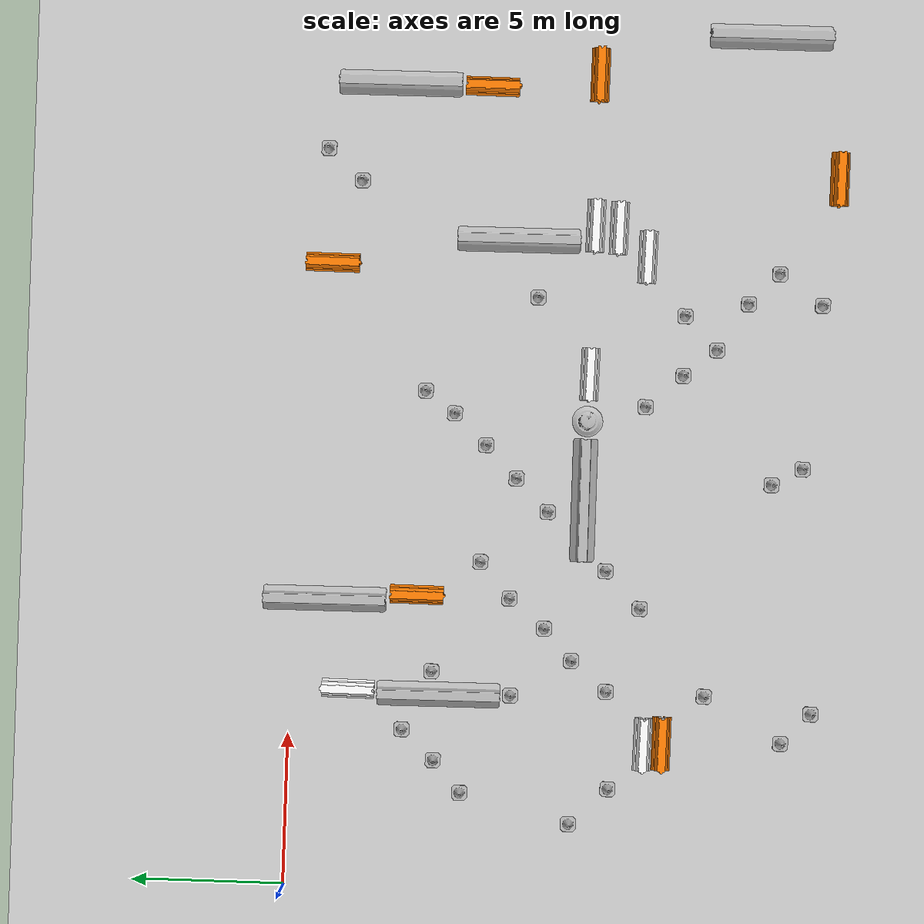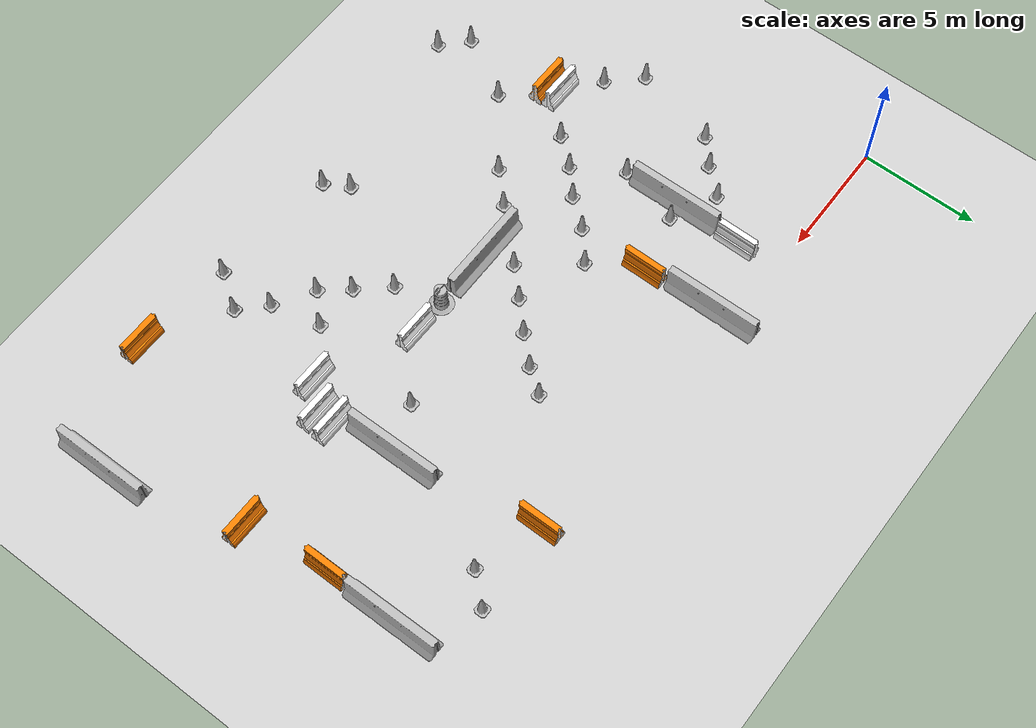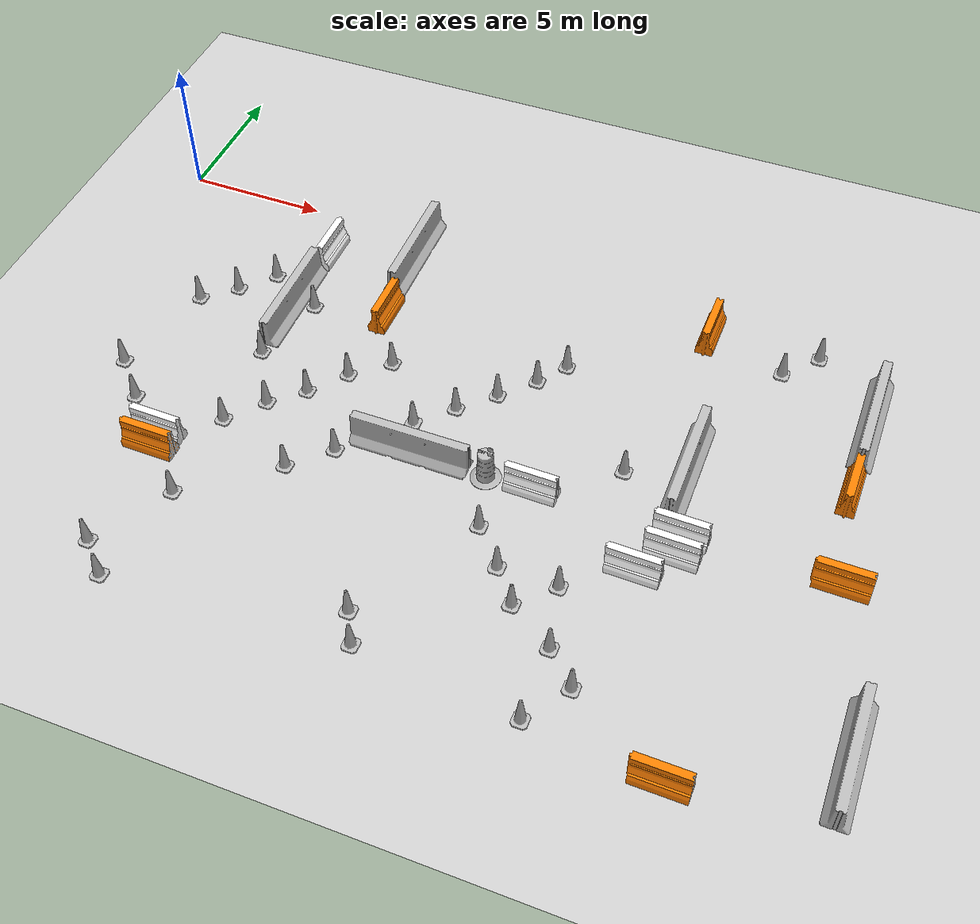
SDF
<sdf version="1.6">
 <world name="default">
  <model name="ground_plane">
   <static>1</static>
   <link name="link">
    <collision name="collision">
     <geometry><plane><normal>0 0 1</normal><size>100 100</size></plane></geometry>
     <surface>
      <contact><collide_bitmask>65535</collide_bitmask></contact>
      <friction><ode><mu>100</mu><mu2>50</mu2></ode></friction>
     </surface>
    </collision>
    <visual name="visual">
     <cast_shadows>0</cast_shadows>
     <geometry><plane><normal>0 0 1</normal><size>100 100</size></plane></geometry>
     <material>
      <script><uri>file://media/materials/scripts/gazebo.material</uri><name>Gazebo/Grey</name></script>
     </material>
    </visual>
   </link>
  </model>
  <model name="Construction Cone_0_clone_0_clone_clone_clone_clone_clone_3_clone_0_clone_clone_2_clone_clone_0_clone_0_clone_1">
   <static>1</static>
   <link name="link">
    <collision name="collision">
     <geometry>
      <mesh><scale>10 10 10</scale><uri>model://construction_cone/meshes/construction_cone.dae</uri></mesh>
     </geometry>
    </collision>
    <visual name="visual">
     <geometry>
      <mesh><scale>10 10 10</scale><uri>model://construction_cone/meshes/construction_cone.dae</uri></mesh>
     </geometry>
    </visual>
    <inertial>
     <inertia><ixx>1</ixx><ixy>0</ixy><ixz>0</ixz><iyy>1</iyy><iyz>0</iyz><izz>1</izz></inertia>
     <mass>1</mass>
    </inertial>
   </link>
   <pose>24.3939 -0.708594 -0 0 -0 0</pose>
  </model>
  <model name="Construction Cone_0_clone_0_clone_clone_clone_clone_clone_3_clone_0_clone_clone_2_clone_clone_0_clone_0_clone_2">
   <static>1</static>
   <link name="link">
    <collision name="collision">
     <geometry>
      <mesh><scale>10 10 10</scale><uri>model://construction_cone/meshes/construction_cone.dae</uri></mesh>
     </geometry>
    </collision>
    <visual name="visual">
     <geometry>
      <mesh><scale>10 10 10</scale><uri>model://construction_cone/meshes/construction_cone.dae</uri></mesh>
     </geometry>
    </visual>
    <inertial>
     <inertia><ixx>1</ixx><ixy>0</ixy><ixz>0</ixz><iyy>1</iyy><iyz>0</iyz><izz>1</izz></inertia>
     <mass>1</mass>
    </inertial>
   </link>
   <pose>23.3648 -1.84976 -0 0 -0 0</pose>
  </model>
  <model name="jersey_barrier_clone_clone_clone_clone_clone_clone">
   <static>1</static>
   <link name="link">
    <visual name="visual">
     <geometry><mesh><uri>model://jersey_barrier/meshes/jersey_barrier.dae</uri></mesh></geometry>
    </visual>
    <collision name="upright">
     <pose>0 0 0.5715 0 -0 0</pose>
     <geometry><box><size>4.06542 0.3063 1.143</size></box></geometry>
    </collision>
    <collision name="base">
     <pose>0 0 0.032258 0 -0 0</pose>
     <geometry><box><size>4.06542 0.8107 0.064516</size></box></geometry>
    </collision>
    <collision name="base2">
     <pose>0 0 0.1 0 -0 0</pose>
     <geometry><box><size>4.06542 0.65 0.1</size></box></geometry>
    </collision>
    <collision name="base3">
     <pose>0 0 0.2 0 -0 0</pose>
     <geometry><box><size>4.06542 0.5 0.1</size></box></geometry>
    </collision>
    <collision name="left-angle">
     <pose>0 -0.224 0.2401 0.9 -0 0</pose>
     <geometry><box><size>4.06542 0.5 0.064516</size></box></geometry>
    </collision>
    <collision name="right-angle">
     <pose>0 0.224 0.2401 -0.9 0 0</pose>
     <geometry><box><size>4.06542 0.5 0.064516</size></box></geometry>
    </collision>
   </link>
   <pose>26.6253 -3.02419 0 0 0 -1.56391</pose>
  </model>
  <model name="drc_practice_organge_jersey_barrier_clone_clone_0_clone_0_clone_clone">
   <static>1</static>
   <link name="link">
    <visual name="visual">
     <geometry>
      <mesh><uri>model://drc_practice_orange_jersey_barrier/meshes/jersey_barrier.dae</uri></mesh>
     </geometry>
    </visual>
    <collision name="collision">
     <geometry>
      <mesh><uri>model://drc_practice_orange_jersey_barrier/meshes/jersey_barrier.dae</uri></mesh>
     </geometry>
    </collision>
   </link>
   <pose>26.6095 -6.05632 0 0 -0 0</pose>
  </model>
  <model name="drc_practice_organge_jersey_barrier_clone_clone_0_clone_0_clone_clone_0">
   <static>1</static>
   <link name="link">
    <visual name="visual">
     <geometry>
      <mesh><uri>model://drc_practice_orange_jersey_barrier/meshes/jersey_barrier.dae</uri></mesh>
     </geometry>
    </visual>
    <collision name="collision">
     <geometry>
      <mesh><uri>model://drc_practice_orange_jersey_barrier/meshes/jersey_barrier.dae</uri></mesh>
     </geometry>
    </collision>
   </link>
   <pose>20.6192 -0.970378 0 0 -0 0</pose>
  </model>
  <model name="Construction Cone_0_clone_0_clone_clone_clone_clone_clone_3_clone_0_clone_clone_clone_1_clone_1_clone_clone_clone_0_clone_clone_clone">
   <static>1</static>
   <link name="link">
    <collision name="collision">
     <geometry>
      <mesh><scale>10 10 10</scale><uri>model://construction_cone/meshes/construction_cone.dae</uri></mesh>
     </geometry>
    </collision>
    <visual name="visual">
     <geometry>
      <mesh><scale>10 10 10</scale><uri>model://construction_cone/meshes/construction_cone.dae</uri></mesh>
     </geometry>
    </visual>
    <inertial>
     <inertia><ixx>1</ixx><ixy>0</ixy><ixz>0</ixz><iyy>1</iyy><iyz>0</iyz><izz>1</izz></inertia>
     <mass>1</mass>
    </inertial>
   </link>
   <pose>3.223 -5.72534 -0 0 -1e-06 -0.001073</pose>
  </model>
  <model name="Construction Cone_0_clone_0_clone_clone_clone_clone_clone_3_clone_0_clone_clone_clone_1_clone_1_clone_clone_clone_0_clone_clone_clone_0">
   <static>1</static>
   <link name="link">
    <collision name="collision">
     <geometry>
      <mesh><scale>10 10 10</scale><uri>model://construction_cone/meshes/construction_cone.dae</uri></mesh>
     </geometry>
    </collision>
    <visual name="visual">
     <geometry>
      <mesh><scale>10 10 10</scale><uri>model://construction_cone/meshes/construction_cone.dae</uri></mesh>
     </geometry>
    </visual>
    <inertial>
     <inertia><ixx>1</ixx><ixy>0</ixy><ixz>0</ixz><iyy>1</iyy><iyz>0</iyz><izz>1</izz></inertia>
     <mass>1</mass>
    </inertial>
   </link>
   <pose>4.27367 -4.81293 -0 0 -1e-06 -0.001073</pose>
  </model>
  <model name="Construction Cone_0_clone_0_clone_clone_clone_clone_clone_3_clone_0_clone_clone_clone_1_clone_1_clone_clone_clone_0_clone_clone_clone_1">
   <static>1</static>
   <link name="link">
    <collision name="collision">
     <geometry>
      <mesh><scale>10 10 10</scale><uri>model://construction_cone/meshes/construction_cone.dae</uri></mesh>
     </geometry>
    </collision>
    <visual name="visual">
     <geometry>
      <mesh><scale>10 10 10</scale><uri>model://construction_cone/meshes/construction_cone.dae</uri></mesh>
     </geometry>
    </visual>
    <inertial>
     <inertia><ixx>1</ixx><ixy>0</ixy><ixz>0</ixz><iyy>1</iyy><iyz>0</iyz><izz>1</izz></inertia>
     <mass>1</mass>
    </inertial>
   </link>
   <pose>5.26095 -3.74508 -0 0 0 -0.001073</pose>
  </model>
  <model name="drc_practice_white_jersey_barrier_clone_clone_clone_0_clone_0_clone_clone_0_clone_clone">
   <static>1</static>
   <link name="link">
    <visual name="visual">
     <geometry>
      <mesh><uri>model://drc_practice_white_jersey_barrier/meshes/jersey_barrier.dae</uri></mesh>
     </geometry>
    </visual>
    <collision name="collision">
     <geometry>
      <mesh><uri>model://drc_practice_white_jersey_barrier/meshes/jersey_barrier.dae</uri></mesh>
     </geometry>
    </collision>
   </link>
   <pose>6.55651 -1.93439 0 0 -0 3.13979</pose>
  </model>
  <model name="Construction Cone_0_clone_0_clone_clone_clone_clone_clone_3_clone_0_clone_clone_clone_1_clone_1_clone_clone_clone_0_clone_clone_clone_2">
   <static>1</static>
   <link name="link">
    <collision name="collision">
     <geometry>
      <mesh><scale>10 10 10</scale><uri>model://construction_cone/meshes/construction_cone.dae</uri></mesh>
     </geometry>
    </collision>
    <visual name="visual">
     <geometry>
      <mesh><scale>10 10 10</scale><uri>model://construction_cone/meshes/construction_cone.dae</uri></mesh>
     </geometry>
    </visual>
    <inertial>
     <inertia><ixx>1</ixx><ixy>0</ixy><ixz>0</ixz><iyy>1</iyy><iyz>0</iyz><izz>1</izz></inertia>
     <mass>1</mass>
    </inertial>
   </link>
   <pose>6.49881 -7.30216 -0 0 0 -0.001073</pose>
  </model>
  <model name="Construction Cone_0_clone_0_clone_clone_clone_clone_clone_3_clone_0_clone_clone_clone_1_clone_1_clone_clone_clone_0_clone_clone_clone_2_clone">
   <static>1</static>
   <link name="link">
    <collision name="collision">
     <geometry>
      <mesh><scale>10 10 10</scale><uri>model://construction_cone/meshes/construction_cone.dae</uri></mesh>
     </geometry>
    </collision>
    <visual name="visual">
     <geometry>
      <mesh><scale>10 10 10</scale><uri>model://construction_cone/meshes/construction_cone.dae</uri></mesh>
     </geometry>
    </visual>
    <inertial>
     <inertia><ixx>1</ixx><ixy>0</ixy><ixz>0</ixz><iyy>1</iyy><iyz>0</iyz><izz>1</izz></inertia>
     <mass>1</mass>
    </inertial>
   </link>
   <pose>7.21109 -4.66885 -0 0 0 -0.001073</pose>
  </model>
  <model name="drc_practice_organge_jersey_barrier_clone_clone_0_clone_0_clone_0_clone_clone_clone_clone">
   <static>1</static>
   <link name="link">
    <visual name="visual">
     <geometry>
      <mesh><uri>model://drc_practice_orange_jersey_barrier/meshes/jersey_barrier.dae</uri></mesh>
     </geometry>
    </visual>
    <collision name="collision">
     <geometry>
      <mesh><uri>model://drc_practice_orange_jersey_barrier/meshes/jersey_barrier.dae</uri></mesh>
     </geometry>
    </collision>
   </link>
   <pose>9.73339 -4.10068 0 0 -0 0</pose>
  </model>
  <model name="Construction Cone_0_clone_0_clone_clone_clone_clone_clone_3_clone_0_clone_clone_clone_1_clone_1_clone_clone_clone_0_clone_clone_clone_3">
   <static>1</static>
   <link name="link">
    <collision name="collision">
     <geometry>
      <mesh><scale>10 10 10</scale><uri>model://construction_cone/meshes/construction_cone.dae</uri></mesh>
     </geometry>
    </collision>
    <visual name="visual">
     <geometry>
      <mesh><scale>10 10 10</scale><uri>model://construction_cone/meshes/construction_cone.dae</uri></mesh>
     </geometry>
    </visual>
    <inertial>
     <inertia><ixx>1</ixx><ixy>0</ixy><ixz>0</ixz><iyy>1</iyy><iyz>0</iyz><izz>1</izz></inertia>
     <mass>1</mass>
    </inertial>
   </link>
   <pose>2.30941 -9.35664 -1e-05 -1e-06 -0 -0.001073</pose>
  </model>
  <model name="Construction Cone_0_clone_0_clone_clone_clone_clone_clone_3_clone_0_clone_clone_clone_1_clone_1_clone_clone_clone_0_clone_clone_clone_4">
   <static>1</static>
   <link name="link">
    <collision name="collision">
     <geometry>
      <mesh><scale>10 10 10</scale><uri>model://construction_cone/meshes/construction_cone.dae</uri></mesh>
     </geometry>
    </collision>
    <visual name="visual">
     <geometry>
      <mesh><scale>10 10 10</scale><uri>model://construction_cone/meshes/construction_cone.dae</uri></mesh>
     </geometry>
    </visual>
    <inertial>
     <inertia><ixx>1</ixx><ixy>0</ixy><ixz>0</ixz><iyy>1</iyy><iyz>0</iyz><izz>1</izz></inertia>
     <mass>1</mass>
    </inertial>
   </link>
   <pose>3.50816 -10.6206 -0 0 0 -0.001073</pose>
  </model>
  <model name="drc_practice_white_jersey_barrier_clone_clone_clone_clone_clone_clone_clone_clone_clone_clone_0_clone_clone_0_clone">
   <static>1</static>
   <link name="link">
    <visual name="visual">
     <geometry>
      <mesh><uri>model://drc_practice_white_jersey_barrier/meshes/jersey_barrier.dae</uri></mesh>
     </geometry>
    </visual>
    <collision name="collision">
     <geometry>
      <mesh><uri>model://drc_practice_white_jersey_barrier/meshes/jersey_barrier.dae</uri></mesh>
     </geometry>
    </collision>
   </link>
   <pose>5.04586 -11.7257 0 0 0 -1.58176</pose>
  </model>
  <model name="drc_practice_organge_jersey_barrier_clone_clone_clone_0_clone_clone">
   <static>1</static>
   <link name="link">
    <visual name="visual">
     <geometry>
      <mesh><uri>model://drc_practice_orange_jersey_barrier/meshes/jersey_barrier.dae</uri></mesh>
     </geometry>
    </visual>
    <collision name="collision">
     <geometry>
      <mesh><uri>model://drc_practice_orange_jersey_barrier/meshes/jersey_barrier.dae</uri></mesh>
     </geometry>
    </collision>
   </link>
   <pose>5.0865 -12.341 0 0 0 -1.57472</pose>
  </model>
  <model name="Construction Cone_0_clone_0_clone_clone_clone_clone_clone_3_clone_0_clone_clone_clone_1_clone_1_clone_clone_clone_0_clone_clone_clone_4_clone">
   <static>1</static>
   <link name="link">
    <collision name="collision">
     <geometry>
      <mesh><scale>10 10 10</scale><uri>model://construction_cone/meshes/construction_cone.dae</uri></mesh>
     </geometry>
    </collision>
    <visual name="visual">
     <geometry>
      <mesh><scale>10 10 10</scale><uri>model://construction_cone/meshes/construction_cone.dae</uri></mesh>
     </geometry>
    </visual>
    <inertial>
     <inertia><ixx>1</ixx><ixy>0</ixy><ixz>0</ixz><iyy>1</iyy><iyz>0</iyz><izz>1</izz></inertia>
     <mass>1</mass>
    </inertial>
   </link>
   <pose>6.72354 -10.4518 -0 0 -1e-06 -0.001073</pose>
  </model>
  <model name="Construction Cone_0_clone_0_clone_clone_clone_clone_clone_3_clone_0_clone_clone_clone_1_clone_1_clone_clone_clone_0_clone_clone_clone_4_clone_0">
   <static>1</static>
   <link name="link">
    <collision name="collision">
     <geometry>
      <mesh><scale>10 10 10</scale><uri>model://construction_cone/meshes/construction_cone.dae</uri></mesh>
     </geometry>
    </collision>
    <visual name="visual">
     <geometry>
      <mesh><scale>10 10 10</scale><uri>model://construction_cone/meshes/construction_cone.dae</uri></mesh>
     </geometry>
    </visual>
    <inertial>
     <inertia><ixx>1</ixx><ixy>0</ixy><ixz>0</ixz><iyy>1</iyy><iyz>0</iyz><izz>1</izz></inertia>
     <mass>1</mass>
    </inertial>
   </link>
   <pose>7.71044 -9.27709 -0 0 -1e-06 -0.001073</pose>
  </model>
  <model name="Construction Cone_0_clone_0_clone_clone_clone_clone_clone_3_clone_0_clone_clone_clone_1_clone_1_clone_clone_clone_0_clone_clone_clone_4_clone_1">
   <static>1</static>
   <link name="link">
    <collision name="collision">
     <geometry>
      <mesh><scale>10 10 10</scale><uri>model://construction_cone/meshes/construction_cone.dae</uri></mesh>
     </geometry>
    </collision>
    <visual name="visual">
     <geometry>
      <mesh><scale>10 10 10</scale><uri>model://construction_cone/meshes/construction_cone.dae</uri></mesh>
     </geometry>
    </visual>
    <inertial>
     <inertia><ixx>1</ixx><ixy>0</ixy><ixz>0</ixz><iyy>1</iyy><iyz>0</iyz><izz>1</izz></inertia>
     <mass>1</mass>
    </inertial>
   </link>
   <pose>8.74333 -8.34578 -1e-05 0 0 -0.001073</pose>
  </model>
  <model name="Construction Cone_0_clone_0_clone_clone_clone_clone_clone_3_clone_0_clone_clone_clone_1_clone_1_clone_clone_clone_0_clone_clone_clone_4_clone_2">
   <static>1</static>
   <link name="link">
    <collision name="collision">
     <geometry>
      <mesh><scale>10 10 10</scale><uri>model://construction_cone/meshes/construction_cone.dae</uri></mesh>
     </geometry>
    </collision>
    <visual name="visual">
     <geometry>
      <mesh><scale>10 10 10</scale><uri>model://construction_cone/meshes/construction_cone.dae</uri></mesh>
     </geometry>
    </visual>
    <inertial>
     <inertia><ixx>1</ixx><ixy>0</ixy><ixz>0</ixz><iyy>1</iyy><iyz>0</iyz><izz>1</izz></inertia>
     <mass>1</mass>
    </inertial>
   </link>
   <pose>9.70624 -7.17054 -0 0 -1e-06 -0.001073</pose>
  </model>
  <model name="Construction Cone_0_clone_0_clone_clone_clone_clone_clone_3_clone_0_clone_clone_clone_1_clone_1_clone_clone_clone_0_clone_clone_clone_4_clone_3">
   <static>1</static>
   <link name="link">
    <collision name="collision">
     <geometry>
      <mesh><scale>10 10 10</scale><uri>model://construction_cone/meshes/construction_cone.dae</uri></mesh>
     </geometry>
    </collision>
    <visual name="visual">
     <geometry>
      <mesh><scale>10 10 10</scale><uri>model://construction_cone/meshes/construction_cone.dae</uri></mesh>
     </geometry>
    </visual>
    <inertial>
     <inertia><ixx>1</ixx><ixy>0</ixy><ixz>0</ixz><iyy>1</iyy><iyz>0</iyz><izz>1</izz></inertia>
     <mass>1</mass>
    </inertial>
   </link>
   <pose>10.8859 -6.16857 -0 0 0 -0.001073</pose>
  </model>
  <model name="Construction Cone_0_clone_0_clone_clone_clone_clone_clone_3_clone_0_clone_clone_clone_1_clone_1_clone_clone_clone_0_clone_clone_clone_4_clone_4">
   <static>1</static>
   <link name="link">
    <collision name="collision">
     <geometry>
      <mesh><scale>10 10 10</scale><uri>model://construction_cone/meshes/construction_cone.dae</uri></mesh>
     </geometry>
    </collision>
    <visual name="visual">
     <geometry>
      <mesh><scale>10 10 10</scale><uri>model://construction_cone/meshes/construction_cone.dae</uri></mesh>
     </geometry>
    </visual>
    <inertial>
     <inertia><ixx>1</ixx><ixy>0</ixy><ixz>0</ixz><iyy>1</iyy><iyz>0</iyz><izz>1</izz></inertia>
     <mass>1</mass>
    </inertial>
   </link>
   <pose>6.67651 -13.7027 -0 0 0 -0.001073</pose>
  </model>
  <model name="jersey_barrier_clone_clone_clone_0_clone_clone_clone_clone_1">
   <static>1</static>
   <link name="link">
    <visual name="visual">
     <geometry><mesh><uri>model://jersey_barrier/meshes/jersey_barrier.dae</uri></mesh></geometry>
    </visual>
    <collision name="upright">
     <pose>0 0 0.5715 0 -0 0</pose>
     <geometry><box><size>4.06542 0.3063 1.143</size></box></geometry>
    </collision>
    <collision name="base">
     <pose>0 0 0.032258 0 -0 0</pose>
     <geometry><box><size>4.06542 0.8107 0.064516</size></box></geometry>
    </collision>
    <collision name="base2">
     <pose>0 0 0.1 0 -0 0</pose>
     <geometry><box><size>4.06542 0.65 0.1</size></box></geometry>
    </collision>
    <collision name="base3">
     <pose>0 0 0.2 0 -0 0</pose>
     <geometry><box><size>4.06542 0.5 0.1</size></box></geometry>
    </collision>
    <collision name="left-angle">
     <pose>0 -0.224 0.2401 0.9 -0 0</pose>
     <geometry><box><size>4.06542 0.5 0.064516</size></box></geometry>
    </collision>
    <collision name="right-angle">
     <pose>0 0.224 0.2401 -0.9 0 0</pose>
     <geometry><box><size>4.06542 0.5 0.064516</size></box></geometry>
    </collision>
   </link>
   <pose>13.0321 -9.51061 0 0 -0 0</pose>
  </model>
  <model name="drc_practice_white_jersey_barrier_clone_clone_clone_clone_clone_clone_clone_clone_clone_clone_0_clone_clone_0_clone_clone">
   <static>1</static>
   <link name="link">
    <visual name="visual">
     <geometry>
      <mesh><uri>model://drc_practice_white_jersey_barrier/meshes/jersey_barrier.dae</uri></mesh>
     </geometry>
    </visual>
    <collision name="collision">
     <geometry>
      <mesh><uri>model://drc_practice_white_jersey_barrier/meshes/jersey_barrier.dae</uri></mesh>
     </geometry>
    </collision>
   </link>
   <pose>17.2036 -9.57371 0 0 0 -1.58176</pose>
  </model>
  <model name="Construction Barrel_clone_clone_0_clone_clone_0_clone_clone_clone">
   <static>1</static>
   <link name="link">
    <inertial>
     <pose>0 0 0.4 0 -0 0</pose>
     <mass>500</mass>
     <inertia><ixx>51.2096</ixx><iyy>51.2096</iyy><izz>25</izz><ixy>0</ixy><ixz>0</ixz><iyz>0</iyz></inertia>
    </inertial>
    <collision name="collision">
     <geometry><mesh><uri>model://construction_barrel/meshes/construction_barrel.dae</uri></mesh></geometry>
    </collision>
    <visual name="visual">
     <geometry><mesh><uri>model://construction_barrel/meshes/construction_barrel.dae</uri></mesh></geometry>
    </visual>
   </link>
   <pose>15.6465 -9.55137 0 0 -0 0.001177</pose>
  </model>
  <model name="Construction Cone_0_clone_0_clone_clone_clone_clone_clone_3_clone_0_clone_clone_clone_1_clone_1_clone_clone_clone_0_clone_clone_clone_4_clone_1_clone">
   <static>1</static>
   <link name="link">
    <collision name="collision">
     <geometry>
      <mesh><scale>10 10 10</scale><uri>model://construction_cone/meshes/construction_cone.dae</uri></mesh>
     </geometry>
    </collision>
    <visual name="visual">
     <geometry>
      <mesh><scale>10 10 10</scale><uri>model://construction_cone/meshes/construction_cone.dae</uri></mesh>
     </geometry>
    </visual>
    <inertial>
     <inertia><ixx>1</ixx><ixy>0</ixy><ixz>0</ixz><iyy>1</iyy><iyz>0</iyz><izz>1</izz></inertia>
     <mass>1</mass>
    </inertial>
   </link>
   <pose>10.7133 -10.3099 -1e-05 0 0 -0.001073</pose>
  </model>
  <model name="Construction Cone_0_clone_0_clone_clone_clone_clone_clone_3_clone_0_clone_clone_clone_1_clone_1_clone_clone_clone_0_clone_clone_clone_4_clone_1_clone_0">
   <static>1</static>
   <link name="link">
    <collision name="collision">
     <geometry>
      <mesh><scale>10 10 10</scale><uri>model://construction_cone/meshes/construction_cone.dae</uri></mesh>
     </geometry>
    </collision>
    <visual name="visual">
     <geometry>
      <mesh><scale>10 10 10</scale><uri>model://construction_cone/meshes/construction_cone.dae</uri></mesh>
     </geometry>
    </visual>
    <inertial>
     <inertia><ixx>1</ixx><ixy>0</ixy><ixz>0</ixz><iyy>1</iyy><iyz>0</iyz><izz>1</izz></inertia>
     <mass>1</mass>
    </inertial>
   </link>
   <pose>9.50599 -11.4832 -9e-06 -1e-06 -0 -0.001073</pose>
  </model>
  <model name="Construction Cone_0_clone_0_clone_clone_clone_clone_clone_3_clone_0_clone_clone_clone_1_clone_1_clone_clone_clone_0_clone_clone_clone_4_clone_1_clone_1">
   <static>1</static>
   <link name="link">
    <collision name="collision">
     <geometry>
      <mesh><scale>10 10 10</scale><uri>model://construction_cone/meshes/construction_cone.dae</uri></mesh>
     </geometry>
    </collision>
    <visual name="visual">
     <geometry>
      <mesh><scale>10 10 10</scale><uri>model://construction_cone/meshes/construction_cone.dae</uri></mesh>
     </geometry>
    </visual>
    <inertial>
     <inertia><ixx>1</ixx><ixy>0</ixy><ixz>0</ixz><iyy>1</iyy><iyz>0</iyz><izz>1</izz></inertia>
     <mass>1</mass>
    </inertial>
   </link>
   <pose>12.6089 -8.3345 -0 0 -1e-06 -0.001073</pose>
  </model>
  <model name="Construction Cone_0_clone_0_clone_clone_clone_clone_clone_3_clone_0_clone_clone_clone_1_clone_1_clone_clone_clone_0_clone_clone_clone_4_clone_1_clone_2">
   <static>1</static>
   <link name="link">
    <collision name="collision">
     <geometry>
      <mesh><scale>10 10 10</scale><uri>model://construction_cone/meshes/construction_cone.dae</uri></mesh>
     </geometry>
    </collision>
    <visual name="visual">
     <geometry>
      <mesh><scale>10 10 10</scale><uri>model://construction_cone/meshes/construction_cone.dae</uri></mesh>
     </geometry>
    </visual>
    <inertial>
     <inertia><ixx>1</ixx><ixy>0</ixy><ixz>0</ixz><iyy>1</iyy><iyz>0</iyz><izz>1</izz></inertia>
     <mass>1</mass>
    </inertial>
   </link>
   <pose>13.6801 -7.26771 -0 0 0 -0.001073</pose>
  </model>
  <model name="Construction Cone_0_clone_0_clone_clone_clone_clone_clone_3_clone_0_clone_clone_clone_1_clone_1_clone_clone_clone_0_clone_clone_clone_4_clone_1_clone_3">
   <static>1</static>
   <link name="link">
    <collision name="collision">
     <geometry>
      <mesh><scale>10 10 10</scale><uri>model://construction_cone/meshes/construction_cone.dae</uri></mesh>
     </geometry>
    </collision>
    <visual name="visual">
     <geometry>
      <mesh><scale>10 10 10</scale><uri>model://construction_cone/meshes/construction_cone.dae</uri></mesh>
     </geometry>
    </visual>
    <inertial>
     <inertia><ixx>1</ixx><ixy>0</ixy><ixz>0</ixz><iyy>1</iyy><iyz>0</iyz><izz>1</izz></inertia>
     <mass>1</mass>
    </inertial>
   </link>
   <pose>14.7511 -6.22741 -0 0 0 -0.001073</pose>
  </model>
  <model name="Construction Cone_0_clone_0_clone_clone_clone_clone_clone_3_clone_0_clone_clone_clone_1_clone_1_clone_clone_clone_0_clone_clone_clone_4_clone_1_clone_4">
   <static>1</static>
   <link name="link">
    <collision name="collision">
     <geometry>
      <mesh><scale>10 10 10</scale><uri>model://construction_cone/meshes/construction_cone.dae</uri></mesh>
     </geometry>
    </collision>
    <visual name="visual">
     <geometry>
      <mesh><scale>10 10 10</scale><uri>model://construction_cone/meshes/construction_cone.dae</uri></mesh>
     </geometry>
    </visual>
    <inertial>
     <inertia><ixx>1</ixx><ixy>0</ixy><ixz>0</ixz><iyy>1</iyy><iyz>0</iyz><izz>1</izz></inertia>
     <mass>1</mass>
    </inertial>
   </link>
   <pose>15.7682 -5.15971 -0 0 -1e-06 -0.001073</pose>
  </model>
  <model name="Construction Cone_0_clone_0_clone_clone_clone_clone_clone_3_clone_0_clone_clone_clone_1_clone_1_clone_clone_clone_0_clone_clone_clone_4_clone_1_clone_5">
   <static>1</static>
   <link name="link">
    <collision name="collision">
     <geometry>
      <mesh><scale>10 10 10</scale><uri>model://construction_cone/meshes/construction_cone.dae</uri></mesh>
     </geometry>
    </collision>
    <visual name="visual">
     <geometry>
      <mesh><scale>10 10 10</scale><uri>model://construction_cone/meshes/construction_cone.dae</uri></mesh>
     </geometry>
    </visual>
    <inertial>
     <inertia><ixx>1</ixx><ixy>0</ixy><ixz>0</ixz><iyy>1</iyy><iyz>0</iyz><izz>1</izz></inertia>
     <mass>1</mass>
    </inertial>
   </link>
   <pose>16.4807 -4.17015 -0 0 0 -0.001073</pose>
  </model>
  <model name="jersey_barrier_clone_clone_clone_clone_clone_clone_clone_0">
   <static>1</static>
   <link name="link">
    <visual name="visual">
     <geometry><mesh><uri>model://jersey_barrier/meshes/jersey_barrier.dae</uri></mesh></geometry>
    </visual>
    <collision name="upright">
     <pose>0 0 0.5715 0 -0 0</pose>
     <geometry><box><size>4.06542 0.3063 1.143</size></box></geometry>
    </collision>
    <collision name="base">
     <pose>0 0 0.032258 0 -0 0</pose>
     <geometry><box><size>4.06542 0.8107 0.064516</size></box></geometry>
    </collision>
    <collision name="base2">
     <pose>0 0 0.1 0 -0 0</pose>
     <geometry><box><size>4.06542 0.65 0.1</size></box></geometry>
    </collision>
    <collision name="base3">
     <pose>0 0 0.2 0 -0 0</pose>
     <geometry><box><size>4.06542 0.5 0.1</size></box></geometry>
    </collision>
    <collision name="left-angle">
     <pose>0 -0.224 0.2401 0.9 -0 0</pose>
     <geometry><box><size>4.06542 0.5 0.064516</size></box></geometry>
    </collision>
    <collision name="right-angle">
     <pose>0 0.224 0.2401 -0.9 0 0</pose>
     <geometry><box><size>4.06542 0.5 0.064516</size></box></geometry>
    </collision>
   </link>
   <pose>21.5696 -7.0874 0 0 0 -1.56391</pose>
  </model>
  <model name="Construction Cone_0_clone_0_clone_clone_clone_clone_clone_3_clone_0_clone_clone_clone_1_clone_1_clone_clone_clone_0_clone_clone_clone_4_clone_1_clone_3_clone">
   <static>1</static>
   <link name="link">
    <collision name="collision">
     <geometry>
      <mesh><scale>10 10 10</scale><uri>model://construction_cone/meshes/construction_cone.dae</uri></mesh>
     </geometry>
    </collision>
    <visual name="visual">
     <geometry>
      <mesh><scale>10 10 10</scale><uri>model://construction_cone/meshes/construction_cone.dae</uri></mesh>
     </geometry>
    </visual>
    <inertial>
     <inertia><ixx>1</ixx><ixy>0</ixy><ixz>0</ixz><iyy>1</iyy><iyz>0</iyz><izz>1</izz></inertia>
     <mass>1</mass>
    </inertial>
   </link>
   <pose>19.6917 -7.78831 -3e-06 -3e-06 -1e-06 -0.001073</pose>
  </model>
  <model name="drc_practice_white_jersey_barrier_clone_clone_clone_clone_clone_clone_clone_clone_clone_clone_0_clone_clone_0_clone_clone_0">
   <static>1</static>
   <link name="link">
    <visual name="visual">
     <geometry>
      <mesh><uri>model://drc_practice_white_jersey_barrier/meshes/jersey_barrier.dae</uri></mesh>
     </geometry>
    </visual>
    <collision name="collision">
     <geometry>
      <mesh><uri>model://drc_practice_white_jersey_barrier/meshes/jersey_barrier.dae</uri></mesh>
     </geometry>
    </collision>
   </link>
   <pose>22.115 -9.60356 0 0 0 -1.58176</pose>
  </model>
  <model name="drc_practice_white_jersey_barrier_clone_clone_clone_clone_clone_clone_clone_clone_clone_clone_0_clone_clone_0_clone_clone_1">
   <static>1</static>
   <link name="link">
    <visual name="visual">
     <geometry>
      <mesh><uri>model://drc_practice_white_jersey_barrier/meshes/jersey_barrier.dae</uri></mesh>
     </geometry>
    </visual>
    <collision name="collision">
     <geometry>
      <mesh><uri>model://drc_practice_white_jersey_barrier/meshes/jersey_barrier.dae</uri></mesh>
     </geometry>
    </collision>
   </link>
   <pose>22.0619 -10.3828 0 0 0 -1.58176</pose>
  </model>
  <model name="drc_practice_white_jersey_barrier_clone_clone_clone_clone_clone_clone_clone_clone_clone_clone_0_clone_clone_0_clone_clone_2">
   <static>1</static>
   <link name="link">
    <visual name="visual">
     <geometry>
      <mesh><uri>model://drc_practice_white_jersey_barrier/meshes/jersey_barrier.dae</uri></mesh>
     </geometry>
    </visual>
    <collision name="collision">
     <geometry>
      <mesh><uri>model://drc_practice_white_jersey_barrier/meshes/jersey_barrier.dae</uri></mesh>
     </geometry>
    </collision>
   </link>
   <pose>21.1423 -11.3587 0 0 0 -1.58176</pose>
  </model>
  <model name="drc_practice_organge_jersey_barrier_clone_clone_clone_0_clone_clone_0">
   <static>1</static>
   <link name="link">
    <visual name="visual">
     <geometry>
      <mesh><uri>model://drc_practice_orange_jersey_barrier/meshes/jersey_barrier.dae</uri></mesh>
     </geometry>
    </visual>
    <collision name="collision">
     <geometry>
      <mesh><uri>model://drc_practice_orange_jersey_barrier/meshes/jersey_barrier.dae</uri></mesh>
     </geometry>
    </collision>
   </link>
   <pose>27.104 -9.59648 0 0 0 -1.57472</pose>
  </model>
  <model name="Construction Cone_0_clone_0_clone_clone_clone_clone_clone_3_clone_0_clone_clone_clone_1_clone_1_clone_clone_clone_0_clone_clone_clone_4_clone_1_clone_3_clone_clone">
   <static>1</static>
   <link name="link">
    <collision name="collision">
     <geometry>
      <mesh><scale>10 10 10</scale><uri>model://construction_cone/meshes/construction_cone.dae</uri></mesh>
     </geometry>
    </collision>
    <visual name="visual">
     <geometry>
      <mesh><scale>10 10 10</scale><uri>model://construction_cone/meshes/construction_cone.dae</uri></mesh>
     </geometry>
    </visual>
    <inertial>
     <inertia><ixx>1</ixx><ixy>0</ixy><ixz>0</ixz><iyy>1</iyy><iyz>0</iyz><izz>1</izz></inertia>
     <mass>1</mass>
    </inertial>
   </link>
   <pose>19.2337 -12.6687 -0 0 0 -0.001073</pose>
  </model>
  <model name="Construction Cone_0_clone_0_clone_clone_clone_clone_clone_3_clone_0_clone_clone_clone_1_clone_1_clone_clone_clone_0_clone_clone_clone_4_clone_1_clone_3_clone_clone_0">
   <static>1</static>
   <link name="link">
    <collision name="collision">
     <geometry>
      <mesh><scale>10 10 10</scale><uri>model://construction_cone/meshes/construction_cone.dae</uri></mesh>
     </geometry>
    </collision>
    <visual name="visual">
     <geometry>
      <mesh><scale>10 10 10</scale><uri>model://construction_cone/meshes/construction_cone.dae</uri></mesh>
     </geometry>
    </visual>
    <inertial>
     <inertia><ixx>1</ixx><ixy>0</ixy><ixz>0</ixz><iyy>1</iyy><iyz>0</iyz><izz>1</izz></inertia>
     <mass>1</mass>
    </inertial>
   </link>
   <pose>18.1426 -13.7602 -0 0 -1e-06 -0.001073</pose>
  </model>
  <model name="Construction Cone_0_clone_0_clone_clone_clone_clone_clone_3_clone_0_clone_clone_clone_1_clone_1_clone_clone_clone_0_clone_clone_clone_4_clone_1_clone_3_clone_clone_1">
   <static>1</static>
   <link name="link">
    <collision name="collision">
     <geometry>
      <mesh><scale>10 10 10</scale><uri>model://construction_cone/meshes/construction_cone.dae</uri></mesh>
     </geometry>
    </collision>
    <visual name="visual">
     <geometry>
      <mesh><scale>10 10 10</scale><uri>model://construction_cone/meshes/construction_cone.dae</uri></mesh>
     </geometry>
    </visual>
    <inertial>
     <inertia><ixx>1</ixx><ixy>0</ixy><ixz>0</ixz><iyy>1</iyy><iyz>0</iyz><izz>1</izz></inertia>
     <mass>1</mass>
    </inertial>
   </link>
   <pose>17.2601 -12.672 -0 0 -1e-06 -0.001073</pose>
  </model>
  <model name="Construction Cone_0_clone_0_clone_clone_clone_clone_clone_3_clone_0_clone_clone_clone_1_clone_1_clone_clone_clone_0_clone_clone_clone_4_clone_1_clone_3_clone_clone_2">
   <static>1</static>
   <link name="link">
    <collision name="collision">
     <geometry>
      <mesh><scale>10 10 10</scale><uri>model://construction_cone/meshes/construction_cone.dae</uri></mesh>
     </geometry>
    </collision>
    <visual name="visual">
     <geometry>
      <mesh><scale>10 10 10</scale><uri>model://construction_cone/meshes/construction_cone.dae</uri></mesh>
     </geometry>
    </visual>
    <inertial>
     <inertia><ixx>1</ixx><ixy>0</ixy><ixz>0</ixz><iyy>1</iyy><iyz>0</iyz><izz>1</izz></inertia>
     <mass>1</mass>
    </inertial>
   </link>
   <pose>16.1856 -11.4529 -0 0 -1e-06 -0.001073</pose>
  </model>
  <model name="Construction Cone_0_clone_0_clone_clone_clone_clone_clone_3_clone_0_clone_clone_clone_1_clone_1_clone_clone_clone_0_clone_clone_clone_4_clone_1_clone_3_clone_clone_1_clone">
   <static>1</static>
   <link name="link">
    <collision name="collision">
     <geometry>
      <mesh><scale>10 10 10</scale><uri>model://construction_cone/meshes/construction_cone.dae</uri></mesh>
     </geometry>
    </collision>
    <visual name="visual">
     <geometry>
      <mesh><scale>10 10 10</scale><uri>model://construction_cone/meshes/construction_cone.dae</uri></mesh>
     </geometry>
    </visual>
    <inertial>
     <inertia><ixx>1</ixx><ixy>0</ixy><ixz>0</ixz><iyy>1</iyy><iyz>0</iyz><izz>1</izz></inertia>
     <mass>1</mass>
    </inertial>
   </link>
   <pose>13.7465 -15.7068 -0 0 -1e-06 -0.001073</pose>
  </model>
  <model name="Construction Cone_0_clone_0_clone_clone_clone_clone_clone_3_clone_0_clone_clone_clone_1_clone_1_clone_clone_clone_0_clone_clone_clone_4_clone_1_clone_3_clone_clone_1_clone_0">
   <static>1</static>
   <link name="link">
    <collision name="collision">
     <geometry>
      <mesh><scale>10 10 10</scale><uri>model://construction_cone/meshes/construction_cone.dae</uri></mesh>
     </geometry>
    </collision>
    <visual name="visual">
     <geometry>
      <mesh><scale>10 10 10</scale><uri>model://construction_cone/meshes/construction_cone.dae</uri></mesh>
     </geometry>
    </visual>
    <inertial>
     <inertia><ixx>1</ixx><ixy>0</ixy><ixz>0</ixz><iyy>1</iyy><iyz>0</iyz><izz>1</izz></inertia>
     <mass>1</mass>
    </inertial>
   </link>
   <pose>14.3002 -16.7136 -0 0 0 -0.001073</pose>
  </model>
  <model name="Construction Cone_0_clone_0_clone_clone_clone_clone_clone_3_clone_0_clone_clone_clone_1_clone_1_clone_clone_clone_0_clone_clone_clone_4_clone_1_clone_3_clone_clone_1_clone_5">
   <static>1</static>
   <link name="link">
    <collision name="collision">
     <geometry>
      <mesh><scale>10 10 10</scale><uri>model://construction_cone/meshes/construction_cone.dae</uri></mesh>
     </geometry>
    </collision>
    <visual name="visual">
     <geometry>
      <mesh><scale>10 10 10</scale><uri>model://construction_cone/meshes/construction_cone.dae</uri></mesh>
     </geometry>
    </visual>
    <inertial>
     <inertia><ixx>1</ixx><ixy>0</ixy><ixz>0</ixz><iyy>1</iyy><iyz>0</iyz><izz>1</izz></inertia>
     <mass>1</mass>
    </inertial>
   </link>
   <pose>19.7363 -17.206 -0 0 0 -0.001073</pose>
  </model>
  <model name="Construction Cone_0_clone_0_clone_clone_clone_clone_clone_3_clone_0_clone_clone_clone_1_clone_1_clone_clone_clone_0_clone_clone_clone_4_clone_1_clone_3_clone_clone_1_clone_6">
   <static>1</static>
   <link name="link">
    <collision name="collision">
     <geometry>
      <mesh><scale>10 10 10</scale><uri>model://construction_cone/meshes/construction_cone.dae</uri></mesh>
     </geometry>
    </collision>
    <visual name="visual">
     <geometry>
      <mesh><scale>10 10 10</scale><uri>model://construction_cone/meshes/construction_cone.dae</uri></mesh>
     </geometry>
    </visual>
    <inertial>
     <inertia><ixx>1</ixx><ixy>0</ixy><ixz>0</ixz><iyy>1</iyy><iyz>0</iyz><izz>1</izz></inertia>
     <mass>1</mass>
    </inertial>
   </link>
   <pose>19.7031 -14.7564 -0 0 -1e-06 -0.001073</pose>
  </model>
  <model name="Construction Cone_0_clone_0_clone_clone_clone_clone_clone_3_clone_0_clone_clone_clone_1_clone_1_clone_clone_clone_0_clone_clone_clone_4_clone_1_clone_3_clone_clone_1_clone_7">
   <static>1</static>
   <link name="link">
    <collision name="collision">
     <geometry>
      <mesh><scale>10 10 10</scale><uri>model://construction_cone/meshes/construction_cone.dae</uri></mesh>
     </geometry>
    </collision>
    <visual name="visual">
     <geometry>
      <mesh><scale>10 10 10</scale><uri>model://construction_cone/meshes/construction_cone.dae</uri></mesh>
     </geometry>
    </visual>
    <inertial>
     <inertia><ixx>1</ixx><ixy>0</ixy><ixz>0</ixz><iyy>1</iyy><iyz>0</iyz><izz>1</izz></inertia>
     <mass>1</mass>
    </inertial>
   </link>
   <pose>20.7283 -15.7643 -0 0 -1e-06 -0.001073</pose>
  </model>
  <model name="Construction Cone_0_clone_0_clone_clone_clone_clone_clone_3_clone_0_clone_clone_clone_1_clone_1_clone_clone_clone_0_clone_clone_clone_4_clone_1_clone_3_clone_clone_1_clone_2_clone_0_clone_2">
   <static>1</static>
   <link name="link">
    <collision name="collision">
     <geometry>
      <mesh><scale>10 10 10</scale><uri>model://construction_cone/meshes/construction_cone.dae</uri></mesh>
     </geometry>
    </collision>
    <visual name="visual">
     <geometry>
      <mesh><scale>10 10 10</scale><uri>model://construction_cone/meshes/construction_cone.dae</uri></mesh>
     </geometry>
    </visual>
    <inertial>
     <inertia><ixx>1</ixx><ixy>0</ixy><ixz>0</ixz><iyy>1</iyy><iyz>0</iyz><izz>1</izz></inertia>
     <mass>1</mass>
    </inertial>
   </link>
   <pose>5.20359 -16.28 -0 0 0 -0.001073</pose>
  </model>
  <model name="Construction Cone_0_clone_0_clone_clone_clone_clone_clone_3_clone_0_clone_clone_clone_1_clone_1_clone_clone_clone_0_clone_clone_clone_4_clone_1_clone_3_clone_clone_1_clone_2_clone_0_clone_2_clone">
   <static>1</static>
   <link name="link">
    <collision name="collision">
     <geometry>
      <mesh><scale>10 10 10</scale><uri>model://construction_cone/meshes/construction_cone.dae</uri></mesh>
     </geometry>
    </collision>
    <visual name="visual">
     <geometry>
      <mesh><scale>10 10 10</scale><uri>model://construction_cone/meshes/construction_cone.dae</uri></mesh>
     </geometry>
    </visual>
    <inertial>
     <inertia><ixx>1</ixx><ixy>0</ixy><ixz>0</ixz><iyy>1</iyy><iyz>0</iyz><izz>1</izz></inertia>
     <mass>1</mass>
    </inertial>
   </link>
   <pose>6.20941 -17.2482 -0 0 -1e-06 -0.001073</pose>
  </model>
  <model name="jersey_barrier_clone_clone_clone_clone_clone_clone_clone_0_clone_0">
   <static>1</static>
   <link name="link">
    <visual name="visual">
     <geometry><mesh><uri>model://jersey_barrier/meshes/jersey_barrier.dae</uri></mesh></geometry>
    </visual>
    <collision name="upright">
     <pose>0 0 0.5715 0 -0 0</pose>
     <geometry><box><size>4.06542 0.3063 1.143</size></box></geometry>
    </collision>
    <collision name="base">
     <pose>0 0 0.032258 0 -0 0</pose>
     <geometry><box><size>4.06542 0.8107 0.064516</size></box></geometry>
    </collision>
    <collision name="base2">
     <pose>0 0 0.1 0 -0 0</pose>
     <geometry><box><size>4.06542 0.65 0.1</size></box></geometry>
    </collision>
    <collision name="base3">
     <pose>0 0 0.2 0 -0 0</pose>
     <geometry><box><size>4.06542 0.5 0.1</size></box></geometry>
    </collision>
    <collision name="left-angle">
     <pose>0 -0.224 0.2401 0.9 -0 0</pose>
     <geometry><box><size>4.06542 0.5 0.064516</size></box></geometry>
    </collision>
    <collision name="right-angle">
     <pose>0 0.224 0.2401 -0.9 0 0</pose>
     <geometry><box><size>4.06542 0.5 0.064516</size></box></geometry>
    </collision>
   </link>
   <pose>28.5554 -15.2097 0 0 0 -1.56391</pose>
  </model>
  <model name="drc_practice_organge_jersey_barrier_clone_clone_clone_0_clone_clone_0_clone">
   <static>1</static>
   <link name="link">
    <visual name="visual">
     <geometry>
      <mesh><uri>model://drc_practice_orange_jersey_barrier/meshes/jersey_barrier.dae</uri></mesh>
     </geometry>
    </visual>
    <collision name="collision">
     <geometry>
      <mesh><uri>model://drc_practice_orange_jersey_barrier/meshes/jersey_barrier.dae</uri></mesh>
     </geometry>
    </collision>
   </link>
   <pose>23.9226 -17.6216 0 0 0 -1.57472</pose>
  </model>
  <model name="jersey_barrier_clone_clone_clone_clone_clone_clone_clone_clone_clone_clone_clone_clone_clone_clone_clone">
   <static>1</static>
   <link name="link">
    <visual name="visual">
     <geometry><mesh><uri>model://jersey_barrier/meshes/jersey_barrier.dae</uri></mesh></geometry>
    </visual>
    <collision name="upright">
     <pose>0 0 0.5715 0 -0 0</pose>
     <geometry><box><size>4.06542 0.3063 1.143</size></box></geometry>
    </collision>
    <collision name="base">
     <pose>0 0 0.032258 0 -0 0</pose>
     <geometry><box><size>4.06542 0.8107 0.064516</size></box></geometry>
    </collision>
    <collision name="base2">
     <pose>0 0 0.1 0 -0 0</pose>
     <geometry><box><size>4.06542 0.65 0.1</size></box></geometry>
    </collision>
    <collision name="base3">
     <pose>0 0 0.2 0 -0 0</pose>
     <geometry><box><size>4.06542 0.5 0.1</size></box></geometry>
    </collision>
    <collision name="left-angle">
     <pose>0 -0.224 0.2401 0.9 -0 0</pose>
     <geometry><box><size>4.06542 0.5 0.064516</size></box></geometry>
    </collision>
    <collision name="right-angle">
     <pose>0 0.224 0.2401 -0.9 0 0</pose>
     <geometry><box><size>4.06542 0.5 0.064516</size></box></geometry>
    </collision>
   </link>
   <pose>6.45991 -4.92386 0 0 0 -1.56391</pose>
  </model>
  <model name="jersey_barrier_clone_clone_clone_clone_clone_clone_clone_clone_clone_clone_clone_clone_clone_clone_clone_clone">
   <static>1</static>
   <link name="link">
    <visual name="visual">
     <geometry><mesh><uri>model://jersey_barrier/meshes/jersey_barrier.dae</uri></mesh></geometry>
    </visual>
    <collision name="upright">
     <pose>0 0 0.5715 0 -0 0</pose>
     <geometry><box><size>4.06542 0.3063 1.143</size></box></geometry>
    </collision>
    <collision name="base">
     <pose>0 0 0.032258 0 -0 0</pose>
     <geometry><box><size>4.06542 0.8107 0.064516</size></box></geometry>
    </collision>
    <collision name="base2">
     <pose>0 0 0.1 0 -0 0</pose>
     <geometry><box><size>4.06542 0.65 0.1</size></box></geometry>
    </collision>
    <collision name="base3">
     <pose>0 0 0.2 0 -0 0</pose>
     <geometry><box><size>4.06542 0.5 0.1</size></box></geometry>
    </collision>
    <collision name="left-angle">
     <pose>0 -0.224 0.2401 0.9 -0 0</pose>
     <geometry><box><size>4.06542 0.5 0.064516</size></box></geometry>
    </collision>
    <collision name="right-angle">
     <pose>0 0.224 0.2401 -0.9 0 0</pose>
     <geometry><box><size>4.06542 0.5 0.064516</size></box></geometry>
    </collision>
   </link>
   <pose>9.50494 -1.06593 0 0 0 -1.56391</pose>
  </model>
 </world>
</sdf>
